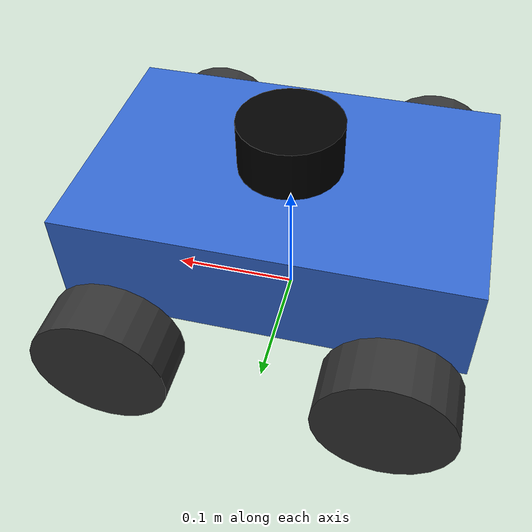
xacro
<?xml version="1.0"?>
<robot xmlns:xacro="http://www.ros.org/wiki/xacro" name="my_robot">

    <!-- ── Global properties — change here, updates everywhere ── -->
    <xacro:property name="chassis_length" value="0.3"/>
    <xacro:property name="chassis_width"  value="0.2"/>
    <xacro:property name="chassis_height" value="0.08"/>
    <xacro:property name="chassis_mass"   value="1.5"/>

    <xacro:property name="wheel_radius"   value="0.05"/>
    <xacro:property name="wheel_width"    value="0.04"/>
    <xacro:property name="wheel_mass"     value="0.3"/>
    <xacro:property name="wheel_sep"      value="0.28"/>
    <xacro:property name="wheelbase"      value="0.2"/>

    <!-- Include sub-files -->
    <xacro:include filename="$(find my_robot_description)/urdf/robot_base.xacro"/>
    <xacro:include filename="$(find my_robot_description)/urdf/robot_wheels.xacro"/>
    <xacro:include filename="$(find my_robot_description)/urdf/robot_sensors.xacro"/>
    <xacro:include filename="$(find my_robot_description)/urdf/gz_plugins.xacro"/>

    <!-- Instantiate everything -->
    <xacro:robot_base/>

    <!-- 4-wheel skid steer -->
    <xacro:robot_wheel side="left_front"  y_offset="${wheel_sep/2}"  x_offset="${wheelbase/2}"/>
    <xacro:robot_wheel side="left_back"   y_offset="${wheel_sep/2}"  x_offset="${-wheelbase/2}"/>
    <xacro:robot_wheel side="right_front" y_offset="${-wheel_sep/2}" x_offset="${wheelbase/2}"/>
    <xacro:robot_wheel side="right_back"  y_offset="${-wheel_sep/2}" x_offset="${-wheelbase/2}"/>

    <xacro:lidar_sensor/>
    <xacro:sensor_plugins/>

</robot>

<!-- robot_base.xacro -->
<robot xmlns:xacro="http://www.ros.org/wiki/xacro">

<xacro:macro name="robot_base">

  <!-- base_link: virtual zero-size frame at ground level -->
  <link name="base_link"/>

  <!-- chassis sits wheel_radius above ground -->
  <joint name="base_to_chassis" type="fixed">
    <parent link="base_link"/>
    <child  link="chassis"/>
    <origin xyz="0 0 ${wheel_radius}" rpy="0 0 0"/>
  </joint>

  <link name="chassis">
    <visual>
      <origin xyz="0 0 ${chassis_height/2}" rpy="0 0 0"/>
      <geometry>
        <box size="${chassis_length} ${chassis_width} ${chassis_height}"/>
      </geometry>
      <material name="blue">
        <color rgba="0.2 0.4 0.8 1.0"/>
      </material>
    </visual>
    <collision>
      <origin xyz="0 0 ${chassis_height/2}" rpy="0 0 0"/>
      <geometry>
        <box size="${chassis_length} ${chassis_width} ${chassis_height}"/>
      </geometry>
    </collision>
    <inertial>
      <mass value="${chassis_mass}"/>
      <inertia
        ixx="${(1/12)*chassis_mass*(chassis_width*chassis_width   + chassis_height*chassis_height)}"
        iyy="${(1/12)*chassis_mass*(chassis_length*chassis_length + chassis_height*chassis_height)}"
        izz="${(1/12)*chassis_mass*(chassis_length*chassis_length + chassis_width*chassis_width)}"
        ixy="0" ixz="0" iyz="0"/>
    </inertial>
  </link>

</xacro:macro>
</robot>

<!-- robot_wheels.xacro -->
<robot xmlns:xacro="http://www.ros.org/wiki/xacro">

<xacro:macro name="robot_wheel" params="side y_offset x_offset">

  <joint name="${side}_wheel_joint" type="continuous">
    <origin xyz="${x_offset} ${y_offset} 0.0" rpy="${-pi/2} 0.0 0.0"/>
    <parent link="chassis"/>
    <child  link="${side}_wheel"/>
    <axis xyz="0.0 0.0 1.0"/>
  </joint>

  <link name="${side}_wheel">
    <inertial>
      <mass value="${wheel_mass}"/>
      <inertia
        ixx="${(1/12)*wheel_mass*(3*wheel_radius**2 + wheel_width**2)}"
        ixy="0.0" ixz="0.0"
        iyy="${(1/12)*wheel_mass*(3*wheel_radius**2 + wheel_width**2)}"
        iyz="0.0"
        izz="${(1/2)*wheel_mass*wheel_radius**2}"/>
    </inertial>
    <visual>
      <geometry>
        <cylinder radius="${wheel_radius}" length="${wheel_width}"/>
      </geometry>
      <material name="dark_grey">
        <color rgba="0.2 0.2 0.2 1.0"/>
      </material>
    </visual>
    <collision>
      <!-- cylinder collision — NOT sphere (sphere causes shaking) -->
      <geometry>
        <cylinder radius="${wheel_radius}" length="${wheel_width}"/>
      </geometry>
    </collision>
  </link>

  <!-- Gazebo physics — Imported from TurtleBot3 Waffle -->
  <gazebo reference="${side}_wheel">
    <mu1>0.1</mu1>
    <mu2>0.1</mu2>
    <kp>500000.0</kp>
    <kd>10.0</kd>
    <minDepth>0.001</minDepth>
    <maxVel>0.1</maxVel>
    <fdir1>1 0 0</fdir1>
  </gazebo>

</xacro:macro>
</robot>

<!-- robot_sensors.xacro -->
<robot xmlns:xacro="http://www.ros.org/wiki/xacro">

<xacro:macro name="lidar_sensor">

  <joint name="chassis2lidar" type="fixed">
    <parent link="chassis"/>
    <child  link="lidar_link"/>
    <!-- Mounted on top of the newly raised chassis -->
    <origin xyz="0.0 0.0 ${chassis_height + 0.02}" rpy="0.0 0.0 0"/>
  </joint>

  <link name="lidar_link">
    <visual>
      <geometry>
        <cylinder radius="0.04" length="0.04"/>
      </geometry>
      <material name="black">
        <color rgba="0.0 0.0 0.0 1.0"/>
      </material>
    </visual>
    <collision>
      <geometry>
        <cylinder radius="0.04" length="0.04"/>
      </geometry>
    </collision>
    <inertial>
      <mass value="0.1"/>
      <inertia ixx="0.001" ixy="0.0" ixz="0.0"
               iyy="0.001" iyz="0.0" izz="0.001"/>
    </inertial>
  </link>

</xacro:macro>
</robot>
